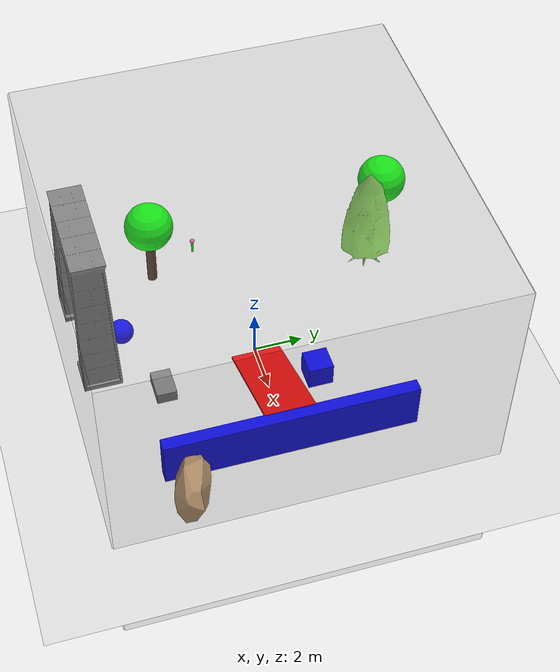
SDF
<sdf version="1.8">
 <world name="default">
  <physics name="1ms" type="ignored">
   <max_step_size>0.001</max_step_size>
   <real_time_factor>1.0</real_time_factor>
  </physics>
  <plugin filename="gz-sim-buoyancy-system" name="gz::sim::systems::Buoyancy">
   <uniform_fluid_density>1640</uniform_fluid_density>
   <enable>butterfly</enable>
  </plugin>
  <plugin filename="gz-sim-physics-system" name="gz::sim::systems::Physics"/>
  <plugin filename="gz-sim-user-commands-system" name="gz::sim::systems::UserCommands"/>
  <plugin filename="gz-sim-scene-broadcaster-system" name="gz::sim::systems::SceneBroadcaster"/>
  <plugin filename="gz-sim-imu-system" name="gz::sim::systems::Imu"/>
  <plugin filename="gz-sim-sensors-system" name="gz::sim::systems::Sensors">
   <render_engine>ogre2</render_engine>
  </plugin>
  <plugin filename="gz-sim-buoyancy-system" name="gz::sim::systems::Buoyancy">
   <uniform_fluid_density>1000</uniform_fluid_density>
  </plugin>
  <plugin filename="gz-sim-particle-emitter-system" name="gz::sim::systems::ParticleEmitter"/>
  <plugin filename="gz-sim-contact-system" name="gz::sim::systems::Contact"/>
  <light type="directional" name="sun">
   <pose>0 0 10 0 0 0</pose>
   <diffuse>0.8 0.8 0.8 1</diffuse>
   <specular>0.2 0.2 0.2 1</specular>
   <attenuation>
    <range>1000</range>
    <constant>0.9</constant>
    <linear>0.01</linear>
    <quadratic>0.001</quadratic>
   </attenuation>
   <direction>-0.5 0.1 -0.9</direction>
  </light>
  <model name="ground_plane">
   <static>true</static>
   <link name="link">
    <collision name="collision"><geometry><plane><normal>0 0 1</normal></plane></geometry></collision>
    <visual name="visual">
     <geometry><plane><normal>0 0 1</normal><size>100 100</size></plane></geometry>
     <material>
      <ambient>0.8 0.8 0.8 1</ambient>
      <diffuse>0.8 0.8 0.8 1</diffuse>
      <specular>0.8 0.8 0.8 1</specular>
     </material>
    </visual>
   </link>
  </model>
  <model name="slope">
   <static>true</static>
   <pose>2.50 0 1 0 -0.40 0</pose>
   <link name="link">
    <visual name="visual">
     <geometry><box><size>5 2 0.1</size></box></geometry>
     <material>
      <ambient>1 0 0 1</ambient>
      <diffuse>1 0 0 1</diffuse>
      <specular>0.5 0.5 0.5 1</specular>
      <emissive>0 0 0 1</emissive>
     </material>
    </visual>
    <collision name="collision"><geometry><box><size>5 2 0.1</size></box></geometry></collision>
   </link>
  </model>
  <model name="sphere">
   <static>true</static>
   <pose>-2 -5 0.5 0 0 0</pose>
   <link name="link">
    <visual name="visual">
     <geometry><sphere><radius>0.5</radius></sphere></geometry>
     <material>
      <ambient>0.0 0.0 1.0 1</ambient>
      <diffuse>0.0 0.0 1.0 1</diffuse>
      <specular>0.0 0.0 1.0 1</specular>
      <emissive>0 0 0 1</emissive>
     </material>
    </visual>
    <collision name="collision"><geometry><sphere><radius>0.5</radius></sphere></geometry></collision>
   </link>
  </model>
  <model name="cube">
   <static>true</static>
   <pose>2 2 0.5 0 0 0</pose>
   <link name="link">
    <visual name="visual">
     <geometry><box><size>1 1 1</size></box></geometry>
     <material>
      <ambient>0.0 0.0 1.0 1</ambient>
      <diffuse>0.0 0.0 1.0 1</diffuse>
      <specular>0.0 0.0 1.0 1</specular>
      <emissive>0 0 0 1</emissive>
     </material>
    </visual>
    <collision name="collision"><geometry><box><size>1 1 1</size></box></geometry></collision>
   </link>
  </model>
  <model name="flower">
   <static>true</static>
   <pose>-6 -1 0.25 0 0 0</pose>
   <link name="stem">
    <visual name="visual">
     <geometry><cylinder><radius>0.05</radius><length>0.5</length></cylinder></geometry>
     <material>
      <ambient>0 1 0 1</ambient>
      <diffuse>0 1 0 1</diffuse>
      <specular>0.2 0.2 0.2 1</specular>
      <emissive>0 0 0 1</emissive>
     </material>
    </visual>
   </link>
   <link name="flower_head">
    <pose>0 0 0.35 0 0 0</pose>
    <visual name="visual">
     <geometry><sphere><radius>0.1</radius></sphere></geometry>
     <material>
      <ambient>1 0.4 0.7 1</ambient>
      <diffuse>1 0.4 0.7 1</diffuse>
      <specular>0.3 0.3 0.3 1</specular>
      <emissive>0 0 0 1</emissive>
     </material>
    </visual>
   </link>
  </model>
  <model name="tree1">
   <static>true</static>
   <pose>-5 7 1 0 0 0</pose>
   <link name="trunk">
    <visual name="visual">
     <geometry><cylinder><radius>0.2</radius><length>2</length></cylinder></geometry>
     <material>
      <ambient>0.3 0.2 0.1 1</ambient>
      <diffuse>0.3 0.2 0.1 1</diffuse>
      <specular>0.1 0.1 0.1 1</specular>
      <emissive>0 0 0 1</emissive>
     </material>
    </visual>
   </link>
   <link name="foliage">
    <pose>0 0 2 0 0 0</pose>
    <visual name="visual">
     <geometry><sphere><radius>1</radius></sphere></geometry>
     <material>
      <ambient>0 1 0 1</ambient>
      <diffuse>0 1 0 1</diffuse>
      <specular>0.2 0.2 0.2 1</specular>
      <emissive>0 0 0 1</emissive>
     </material>
    </visual>
   </link>
  </model>
  <model name="tree2">
   <static>true</static>
   <pose>-5 -3 1 0 0 0</pose>
   <link name="trunk">
    <visual name="visual">
     <geometry><cylinder><radius>0.2</radius><length>2</length></cylinder></geometry>
     <material>
      <ambient>0.3 0.2 0.1 1</ambient>
      <diffuse>0.3 0.2 0.1 1</diffuse>
      <specular>0.1 0.1 0.1 1</specular>
      <emissive>0 0 0 1</emissive>
     </material>
    </visual>
   </link>
   <link name="foliage">
    <pose>0 0 2 0 0 0</pose>
    <visual name="visual">
     <geometry><sphere><radius>1</radius></sphere></geometry>
     <material>
      <ambient>0 1 0 1</ambient>
      <diffuse>0 1 0 1</diffuse>
      <specular>0.2 0.2 0.2 1</specular>
      <emissive>0 0 0 1</emissive>
     </material>
    </visual>
   </link>
  </model>
  <model name="rock">
   <static>true</static>
   <pose>1 -4 0.25 0 0 0</pose>
   <link name="link">
    <visual name="visual">
     <geometry><box><size>1.2 0.8 0.5</size></box></geometry>
     <material>
      <ambient>0.5 0.5 0.5 1</ambient>
      <diffuse>0.5 0.5 0.5 1</diffuse>
      <specular>0.1 0.1 0.1 1</specular>
      <emissive>0 0 0 1</emissive>
     </material>
    </visual>
    <collision name="collision"><geometry><box><size>1.2 0.8 0.5</size></box></geometry></collision>
   </link>
  </model>
  <model name="Rock_horizontal_1">
   <pose>5 -5 0 0 0 0</pose>
   <static>true</static>
   <link name="Rock1">
    <visual name="visual">
     <geometry>
      <mesh>
       <scale>0.5 0.5 0.5</scale>
       <uri>/home/butterfly/butterfly/src/meshes/visual/Rock_horizontal_1.STL</uri>
      </mesh>
     </geometry>
     <material><ambient>0.3 0.3 0.3 1</ambient><diffuse>0.76 0.6 0.42 1</diffuse></material>
    </visual>
    <collision name="collision">
     <geometry>
      <mesh>
       <scale>0.5 0.5 0.5</scale>
       <uri>/home/butterfly/butterfly/src/meshes/visual/Rock_horizontal_1.STL</uri>
      </mesh>
     </geometry>
    </collision>
   </link>
  </model>
  <model name="PineTree">
   <pose>-5 5 0 0 0 0</pose>
   <static>true</static>
   <link name="PineTree">
    <visual name="visual">
     <geometry>
      <mesh><scale>5 5 5</scale><uri>/home/butterfly/butterfly/src/meshes/visual/PineTree.STL</uri></mesh>
     </geometry>
     <material><ambient>0 1 0 1</ambient><diffuse>0.5 0.8 0.3 1</diffuse></material>
    </visual>
    <collision name="collision">
     <geometry>
      <mesh><scale>5 5 5</scale><uri>/home/butterfly/butterfly/src/meshes/visual/PineTree.STL</uri></mesh>
     </geometry>
    </collision>
   </link>
  </model>
  <model name="Arch">
   <pose>-5 -7 0 0 0 0</pose>
   <static>true</static>
   <link name="Arch">
    <visual name="visual">
     <geometry>
      <mesh><scale>0.5 0.5 0.5</scale><uri>/home/butterfly/butterfly/src/meshes/visual/Arch.STL</uri></mesh>
     </geometry>
     <material><ambient>0 1 0 1</ambient><diffuse>0.5 0.5 0.5 1</diffuse></material>
    </visual>
    <collision name="collision">
     <geometry>
      <mesh><scale>0.5 0.5 0.5</scale><uri>/home/butterfly/butterfly/src/meshes/visual/Arch.STL</uri></mesh>
     </geometry>
    </collision>
   </link>
  </model>
  <model name="wall">
   <static>true</static>
   <pose>5 0 1 0 0 0</pose>
   <link name="box">
    <inertial>
     <mass>1.14395</mass>
     <inertia>
      <ixx>9.532917</ixx>
      <ixy>0</ixy>
      <ixz>0</ixz>
      <iyy>0.023832</iyy>
      <iyz>0</iyz>
      <izz>9.556749</izz>
     </inertia>
    </inertial>
    <visual name="visual">
     <geometry><box><size>0.5 10.0 2.0</size></box></geometry>
     <material>
      <ambient>0.0 0.0 1.0 1</ambient>
      <diffuse>0.0 0.0 1.0 1</diffuse>
      <specular>0.0 0.0 1.0 1</specular>
     </material>
    </visual>
    <collision name="collision"><geometry><box><size>0.5 10.0 2.0</size></box></geometry></collision>
    <sensor name="sensor_contact" type="contact"><contact><collision>collision</collision></contact></sensor>
   </link>
   <plugin filename="gz-sim-touchplugin-system" name="gz::sim::systems::TouchPlugin">
    <target>vehicle_blue</target>
    <namespace>wall</namespace>
    <time>0.001</time>
    <enabled>true</enabled>
   </plugin>
  </model>
  <model name="boundary1">
   <pose>0 7.5 1.5 0 0 0</pose>
   <static>true</static>
   <link name="body">
    <visual name="body_visual">
     <geometry><box><size>15 0.1 15</size></box></geometry>
     <material><ambient>1 0.9 0.9 0.2</ambient><diffuse>0.5 0.5 0.5 0.2</diffuse></material>
    </visual>
    <collision name="body_collision"><geometry><box><size>15 0.1 4</size></box></geometry></collision>
   </link>
  </model>
  <model name="boundary2">
   <pose>0 -7.5 1.5 0 0 0</pose>
   <static>true</static>
   <link name="body">
    <visual name="body_visual">
     <geometry><box><size>15 0.1 15</size></box></geometry>
     <material><ambient>1 0.9 0.9 0.2</ambient><diffuse>0.5 0.5 0.5 0.2</diffuse></material>
    </visual>
    <collision name="body_collision"><geometry><box><size>15 0.1 4</size></box></geometry></collision>
   </link>
  </model>
  <model name="boundary3">
   <pose>7.5 0 1.5 0 0 0</pose>
   <static>true</static>
   <link name="body">
    <visual name="body_visual">
     <geometry><box><size>0.1 15 15</size></box></geometry>
     <material><ambient>1 0.9 0.9 0.2</ambient><diffuse>0.5 0.5 0.5 0.2</diffuse></material>
    </visual>
    <collision name="body_collision"><geometry><box><size>0.1 10 4</size></box></geometry></collision>
   </link>
  </model>
  <model name="boundary4">
   <pose>-7.5 0 1.5 0 0 0</pose>
   <static>true</static>
   <link name="body">
    <visual name="body_visual">
     <geometry><box><size>0.1 15 15</size></box></geometry>
     <material><ambient>1 0.9 0.9 0.2</ambient><diffuse>0.5 0.5 0.5 0.2</diffuse></material>
    </visual>
    <collision name="body_collision"><geometry><box><size>0.1 10 4</size></box></geometry></collision>
   </link>
  </model>
  <model name="ceiling">
   <pose>0 0 9 0 0 0</pose>
   <static>true</static>
   <link name="body">
    <visual name="body_visual">
     <geometry><box><size>15 15 0.1</size></box></geometry>
     <material><ambient>1 0.9 0.9 0.2</ambient><diffuse>0.5 0.5 0.5 0.2</diffuse></material>
    </visual>
    <collision name="body_collision"><geometry><box><size>15 15 0.1</size></box></geometry></collision>
   </link>
  </model>
 </world>
</sdf>
